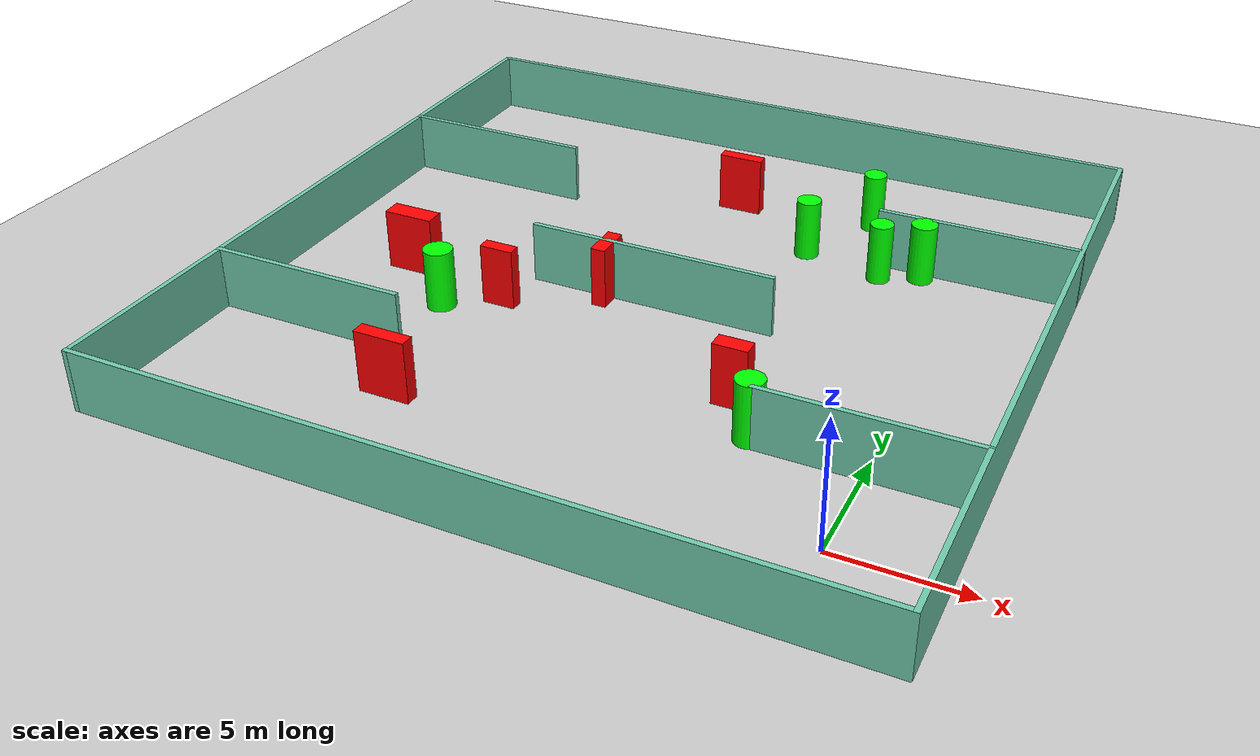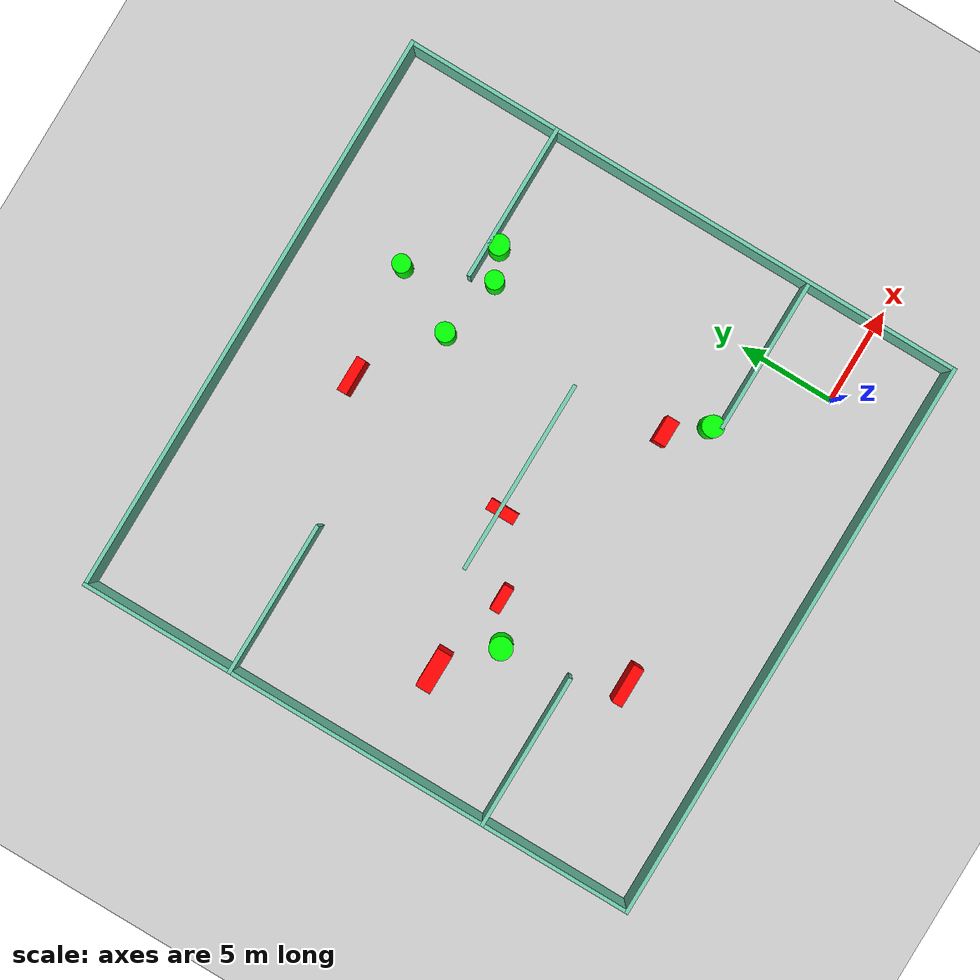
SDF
<sdf version="1.7">
 <world name="default">
  <light name="sun" type="directional">
   <pose>0 0 10 0 -0 0</pose>
   <diffuse>0.8 0.8 0.8 1</diffuse>
   <specular>0.2 0.2 0.2 1</specular>
   <attenuation>
    <range>1000</range>
    <constant>0.9</constant>
    <linear>0.01</linear>
    <quadratic>0.001</quadratic>
   </attenuation>
   <direction>-0.5 0.1 -0.9</direction>
   <spot><inner_angle>0</inner_angle><outer_angle>0</outer_angle><falloff>0</falloff></spot>
  </light>
  <model name="ground_plane">
   <static>1</static>
   <link name="link">
    <collision name="collision">
     <geometry><plane><normal>0 0 1</normal><size>100 100</size></plane></geometry>
     <surface>
      <contact><collide_bitmask>65535</collide_bitmask></contact>
      <friction><ode><mu>100</mu><mu2>50</mu2></ode></friction>
     </surface>
    </collision>
    <visual name="visual">
     <cast_shadows>0</cast_shadows>
     <geometry><plane><normal>0 0 1</normal><size>100 100</size></plane></geometry>
     <material>
      <script><uri>file://media/materials/scripts/gazebo.material</uri><name>Gazebo/Grey</name></script>
     </material>
    </visual>
   </link>
  </model>
  <gravity>0 0 -9.8</gravity>
  <magnetic_field>6e-06 2.3e-05 -4.2e-05</magnetic_field>
  <atmosphere type="adiabatic"/>
  <physics type="ode">
   <max_step_size>0.001</max_step_size>
   <real_time_factor>1</real_time_factor>
   <real_time_update_rate>1000</real_time_update_rate>
  </physics>
  <scene><ambient>0.4 0.4 0.4 1</ambient><background>0.7 0.7 0.7 1</background><shadows>1</shadows></scene>
  <spherical_coordinates>
   <surface_model>EARTH_WGS84</surface_model>
   <latitude_deg>0</latitude_deg>
   <longitude_deg>0</longitude_deg>
   <elevation>0</elevation>
   <heading_deg>0</heading_deg>
  </spherical_coordinates>
  <model name="my_base_walls">
   <link name="Wall_10">
    <collision name="Wall_10_Collision">
     <geometry><box><size>8.2 0.2 2.5</size></box></geometry>
     <pose>0 0 1.25 0 -0 0</pose>
    </collision>
    <visual name="Wall_10_Visual">
     <pose>0 0 1.25 0 -0 0</pose>
     <geometry><box><size>8.2 0.2 2.5</size></box></geometry>
     <material>
      <script><uri>file://media/materials/scripts/gazebo.material</uri><name>Gazebo/Grey</name></script>
      <ambient>0.435294 0.796078 0.67451 1</ambient>
     </material>
     <meta><layer>0</layer></meta>
    </visual>
    <pose>-11 -7 0 0 -0 0</pose>
   </link>
   <link name="Wall_12">
    <collision name="Wall_12_Collision">
     <geometry><box><size>8.2 0.2 2.5</size></box></geometry>
     <pose>0 0 1.25 0 -0 0</pose>
    </collision>
    <visual name="Wall_12_Visual">
     <pose>0 0 1.25 0 -0 0</pose>
     <geometry><box><size>8.2 0.2 2.5</size></box></geometry>
     <material>
      <script><uri>file://media/materials/scripts/gazebo.material</uri><name>Gazebo/Grey</name></script>
      <ambient>0.435294 0.796078 0.67451 1</ambient>
     </material>
     <meta><layer>0</layer></meta>
    </visual>
    <pose>-11 7 0 0 -0 0</pose>
   </link>
   <link name="Wall_14">
    <collision name="Wall_14_Collision">
     <geometry><box><size>8.2 0.2 2.5</size></box></geometry>
     <pose>0 0 1.25 0 -0 0</pose>
    </collision>
    <visual name="Wall_14_Visual">
     <pose>0 0 1.25 0 -0 0</pose>
     <geometry><box><size>8.2 0.2 2.5</size></box></geometry>
     <material>
      <script><uri>file://media/materials/scripts/gazebo.material</uri><name>Gazebo/Grey</name></script>
      <ambient>0.435294 0.796078 0.67451 1</ambient>
     </material>
     <meta><layer>0</layer></meta>
    </visual>
    <pose>11 7 0 0 -0 3.14159</pose>
   </link>
   <link name="Wall_16">
    <collision name="Wall_16_Collision">
     <geometry><box><size>10.2 0.2 2.5</size></box></geometry>
     <pose>0 0 1.25 0 -0 0</pose>
    </collision>
    <visual name="Wall_16_Visual">
     <pose>0 0 1.25 0 -0 0</pose>
     <geometry><box><size>10.2 0.2 2.5</size></box></geometry>
     <material>
      <script><uri>file://media/materials/scripts/gazebo.material</uri><name>Gazebo/Grey</name></script>
      <ambient>0.435294 0.796078 0.67451 1</ambient>
     </material>
     <meta><layer>0</layer></meta>
    </visual>
    <pose>0 0 0 0 -0 3.14159</pose>
   </link>
   <link name="Wall_2">
    <collision name="Wall_2_Collision">
     <geometry><box><size>30.2 0.2 2.5</size></box></geometry>
     <pose>0 0 1.25 0 -0 0</pose>
    </collision>
    <visual name="Wall_2_Visual">
     <pose>0 0 1.25 0 -0 0</pose>
     <geometry><box><size>30.2 0.2 2.5</size></box></geometry>
     <material>
      <script><uri>file://media/materials/scripts/gazebo.material</uri><name>Gazebo/Grey</name></script>
      <ambient>0.435294 0.796078 0.67451 1</ambient>
     </material>
     <meta><layer>0</layer></meta>
    </visual>
    <pose>0 -15 0 0 -0 3.14159</pose>
   </link>
   <link name="Wall_3">
    <collision name="Wall_3_Collision">
     <geometry><box><size>30.2 0.2 2.5</size></box></geometry>
     <pose>0 0 1.25 0 -0 0</pose>
    </collision>
    <visual name="Wall_3_Visual">
     <pose>0 0 1.25 0 -0 0</pose>
     <geometry><box><size>30.2 0.2 2.5</size></box></geometry>
     <material>
      <script><uri>file://media/materials/scripts/gazebo.material</uri><name>Gazebo/Grey</name></script>
      <ambient>0.435294 0.796078 0.67451 1</ambient>
     </material>
     <meta><layer>0</layer></meta>
    </visual>
    <pose>-15 0 0 0 -0 1.5708</pose>
   </link>
   <link name="Wall_4">
    <collision name="Wall_4_Collision">
     <geometry><box><size>30.2 0.2 2.5</size></box></geometry>
     <pose>0 0 1.25 0 -0 0</pose>
    </collision>
    <visual name="Wall_4_Visual">
     <pose>0 0 1.25 0 -0 0</pose>
     <geometry><box><size>30.2 0.2 2.5</size></box></geometry>
     <material>
      <script><uri>file://media/materials/scripts/gazebo.material</uri><name>Gazebo/Grey</name></script>
      <ambient>0.435294 0.796078 0.67451 1</ambient>
     </material>
     <meta><layer>0</layer></meta>
    </visual>
    <pose>0 15 0 0 -0 0</pose>
   </link>
   <link name="Wall_6">
    <collision name="Wall_6_Collision">
     <geometry><box><size>30.2 0.2 2.5</size></box></geometry>
     <pose>0 0 1.25 0 -0 0</pose>
    </collision>
    <visual name="Wall_6_Visual">
     <pose>0 0 1.25 0 -0 0</pose>
     <geometry><box><size>30.2 0.2 2.5</size></box></geometry>
     <material>
      <script><uri>file://media/materials/scripts/gazebo.material</uri><name>Gazebo/Grey</name></script>
      <ambient>0.435294 0.796078 0.67451 1</ambient>
     </material>
     <meta><layer>0</layer></meta>
    </visual>
    <pose>15 0 0 0 -0 1.5708</pose>
   </link>
   <link name="Wall_8">
    <collision name="Wall_8_Collision">
     <geometry><box><size>8.2 0.2 2.5</size></box></geometry>
     <pose>0 0 1.25 0 -0 0</pose>
    </collision>
    <visual name="Wall_8_Visual">
     <pose>0 0 1.25 0 -0 0</pose>
     <geometry><box><size>8.2 0.2 2.5</size></box></geometry>
     <material>
      <script><uri>file://media/materials/scripts/gazebo.material</uri><name>Gazebo/Grey</name></script>
      <ambient>0.435294 0.796078 0.67451 1</ambient>
     </material>
     <meta><layer>0</layer></meta>
    </visual>
    <pose>11 -7 0 0 -0 3.14159</pose>
   </link>
   <static>1</static>
   <pose>-11 11 0 0 -0 0</pose>
  </model>
  <model name="cylinder1">
   <static>1</static>
   <link name="link">
    <inertial>
     <mass>1</mass>
     <inertia><ixx>0.5</ixx><ixy>0</ixy><ixz>0</ixz><iyy>0.5</iyy><iyz>0</iyz><izz>1</izz></inertia>
    </inertial>
    <collision name="collision">
     <geometry><cylinder><radius>0.47603635175889103</radius><length>2.5</length></cylinder></geometry>
    </collision>
    <visual name="visual">
     <geometry><cylinder><radius>0.47603635175889103</radius><length>2.5</length></cylinder></geometry>
     <material>
      <ambient>0 1 0 1</ambient>
      <diffuse>0 1 0 1</diffuse>
      <specular>0.1 0.1 0.1 1</specular>
      <emissive>0 0 0 0</emissive>
     </material>
    </visual>
   </link>
   <pose>-3.6157536779480637 16.85058186043521 1.25 0 0 0</pose>
  </model>
  <model name="cylinder2">
   <static>1</static>
   <link name="link">
    <inertial>
     <mass>1</mass>
     <inertia><ixx>0.5</ixx><ixy>0</ixy><ixz>0</ixz><iyy>0.5</iyy><iyz>0</iyz><izz>1</izz></inertia>
    </inertial>
    <collision name="collision">
     <geometry><cylinder><radius>0.49977883113261834</radius><length>2.5</length></cylinder></geometry>
    </collision>
    <visual name="visual">
     <geometry><cylinder><radius>0.49977883113261834</radius><length>2.5</length></cylinder></geometry>
     <material>
      <ambient>0 1 0 1</ambient>
      <diffuse>0 1 0 1</diffuse>
      <specular>0.1 0.1 0.1 1</specular>
      <emissive>0 0 0 0</emissive>
     </material>
    </visual>
   </link>
   <pose>-6.941858199487104 17.58394843075297 1.25 0 0 0</pose>
  </model>
  <model name="cylinder3">
   <static>1</static>
   <link name="link">
    <inertial>
     <mass>1</mass>
     <inertia><ixx>0.5</ixx><ixy>0</ixy><ixz>0</ixz><iyy>0.5</iyy><iyz>0</iyz><izz>1</izz></inertia>
    </inertial>
    <collision name="collision">
     <geometry><cylinder><radius>0.5279433301341679</radius><length>2.5</length></cylinder></geometry>
    </collision>
    <visual name="visual">
     <geometry><cylinder><radius>0.5279433301341679</radius><length>2.5</length></cylinder></geometry>
     <material>
      <ambient>0 1 0 1</ambient>
      <diffuse>0 1 0 1</diffuse>
      <specular>0.1 0.1 0.1 1</specular>
      <emissive>0 0 0 0</emissive>
     </material>
    </visual>
   </link>
   <pose>-2.075953471238922 17.536596144487316 1.25 0 0 0</pose>
  </model>
  <model name="cylinder4">
   <static>1</static>
   <link name="link">
    <inertial>
     <mass>1</mass>
     <inertia><ixx>0.5</ixx><ixy>0</ixy><ixz>0</ixz><iyy>0.5</iyy><iyz>0</iyz><izz>1</izz></inertia>
    </inertial>
    <collision name="collision">
     <geometry><cylinder><radius>0.5555203419316157</radius><length>2.5</length></cylinder></geometry>
    </collision>
    <visual name="visual">
     <geometry><cylinder><radius>0.5555203419316157</radius><length>2.5</length></cylinder></geometry>
     <material>
      <ambient>0 1 0 1</ambient>
      <diffuse>0 1 0 1</diffuse>
      <specular>0.1 0.1 0.1 1</specular>
      <emissive>0 0 0 0</emissive>
     </material>
    </visual>
   </link>
   <pose>-4.197847432172221 4.392556264293766 1.25 0 0 0</pose>
  </model>
  <model name="cylinder5">
   <static>1</static>
   <link name="link">
    <inertial>
     <mass>1</mass>
     <inertia><ixx>0.5</ixx><ixy>0</ixy><ixz>0</ixz><iyy>0.5</iyy><iyz>0</iyz><izz>1</izz></inertia>
    </inertial>
    <collision name="collision">
     <geometry><cylinder><radius>0.5877428979439306</radius><length>2.5</length></cylinder></geometry>
    </collision>
    <visual name="visual">
     <geometry><cylinder><radius>0.5877428979439306</radius><length>2.5</length></cylinder></geometry>
     <material>
      <ambient>0 1 0 1</ambient>
      <diffuse>0 1 0 1</diffuse>
      <specular>0.1 0.1 0.1 1</specular>
      <emissive>0 0 0 0</emissive>
     </material>
    </visual>
   </link>
   <pose>-18.40696595411106 7.560075945576916 1.25 0 0 0</pose>
  </model>
  <model name="cylinder6">
   <static>1</static>
   <link name="link">
    <inertial>
     <mass>1</mass>
     <inertia><ixx>0.5</ixx><ixy>0</ixy><ixz>0</ixz><iyy>0.5</iyy><iyz>0</iyz><izz>1</izz></inertia>
    </inertial>
    <collision name="collision">
     <geometry><cylinder><radius>0.46845327683234866</radius><length>2.5</length></cylinder></geometry>
    </collision>
    <visual name="visual">
     <geometry><cylinder><radius>0.46845327683234866</radius><length>2.5</length></cylinder></geometry>
     <material>
      <ambient>0 1 0 1</ambient>
      <diffuse>0 1 0 1</diffuse>
      <specular>0.1 0.1 0.1 1</specular>
      <emissive>0 0 0 0</emissive>
     </material>
    </visual>
   </link>
   <pose>-5.228956978178484 21.03134312354278 1.25 0 0 0</pose>
  </model>
  <model name="box1">
   <static>1</static>
   <link name="link">
    <inertial>
     <mass>1</mass>
     <inertia><ixx>0.083</ixx><ixy>0</ixy><ixz>0</ixz><iyy>0.083</iyy><iyz>0</iyz><izz>0.083</izz></inertia>
    </inertial>
    <collision name="collision">
     <geometry><box><size>2.0657857141078217 0.8000561539211626 2.5</size></box></geometry>
    </collision>
    <visual name="visual">
     <geometry><box><size>2.0657857141078217 0.8000561539211626 2.5</size></box></geometry>
     <material>
      <ambient>1 0 0 1</ambient>
      <diffuse>1 0 0 1</diffuse>
      <specular>0.1 0.1 0.1 1</specular>
      <emissive>0 0 0 0</emissive>
     </material>
    </visual>
    <sensor name="my_contact" type="contact">
     <contact><collision>box_collision</collision><topic>__default_topic__</topic></contact>
    </sensor>
   </link>
   <pose>-20.965484768156212 9.72918148283826 1.25 0 0 0</pose>
  </model>
  <model name="box2">
   <static>1</static>
   <link name="link">
    <inertial>
     <mass>1</mass>
     <inertia><ixx>0.083</ixx><ixy>0</ixy><ixz>0</ixz><iyy>0.083</iyy><iyz>0</iyz><izz>0.083</izz></inertia>
    </inertial>
    <collision name="collision">
     <geometry><box><size>1.3601351723195108 0.6721157292941575 2.5</size></box></geometry>
    </collision>
    <visual name="visual">
     <geometry><box><size>1.3601351723195108 0.6721157292941575 2.5</size></box></geometry>
     <material>
      <ambient>1 0 0 1</ambient>
      <diffuse>1 0 0 1</diffuse>
      <specular>0.1 0.1 0.1 1</specular>
      <emissive>0 0 0 0</emissive>
     </material>
    </visual>
    <sensor name="my_contact" type="contact">
     <contact><collision>box_collision</collision><topic>__default_topic__</topic></contact>
    </sensor>
   </link>
   <pose>-5.5444110346181965 6.168704984380131 1.25 0 0 0</pose>
  </model>
  <model name="box3">
   <static>1</static>
   <link name="link">
    <inertial>
     <mass>1</mass>
     <inertia><ixx>0.083</ixx><ixy>0</ixy><ixz>0</ixz><iyy>0.083</iyy><iyz>0</iyz><izz>0.083</izz></inertia>
    </inertial>
    <collision name="collision">
     <geometry><box><size>1.850828763917888 0.5090619776944757 2.5</size></box></geometry>
    </collision>
    <visual name="visual">
     <geometry><box><size>1.850828763917888 0.5090619776944757 2.5</size></box></geometry>
     <material>
      <ambient>1 0 0 1</ambient>
      <diffuse>1 0 0 1</diffuse>
      <specular>0.1 0.1 0.1 1</specular>
      <emissive>0 0 0 0</emissive>
     </material>
    </visual>
    <sensor name="my_contact" type="contact">
     <contact><collision>box_collision</collision><topic>__default_topic__</topic></contact>
    </sensor>
   </link>
   <pose>-10.987575880115896 20.305627853995965 1.25 0 0 0</pose>
  </model>
  <model name="box4">
   <static>1</static>
   <link name="link">
    <inertial>
     <mass>1</mass>
     <inertia><ixx>0.083</ixx><ixy>0</ixy><ixz>0</ixz><iyy>0.083</iyy><iyz>0</iyz><izz>0.083</izz></inertia>
    </inertial>
    <collision name="collision">
     <geometry><box><size>1.3688072737450216 0.5246772795931518 2.5</size></box></geometry>
    </collision>
    <visual name="visual">
     <geometry><box><size>1.3688072737450216 0.5246772795931518 2.5</size></box></geometry>
     <material>
      <ambient>1 0 0 1</ambient>
      <diffuse>1 0 0 1</diffuse>
      <specular>0.1 0.1 0.1 1</specular>
      <emissive>0 0 0 0</emissive>
     </material>
    </visual>
    <sensor name="my_contact" type="contact">
     <contact><collision>box_collision</collision><topic>__default_topic__</topic></contact>
    </sensor>
   </link>
   <pose>-16.3876791578964 8.731481900913606 1.25 0 0 0</pose>
  </model>
  <model name="box5">
   <static>1</static>
   <link name="link">
    <inertial>
     <mass>1</mass>
     <inertia><ixx>0.083</ixx><ixy>0</ixy><ixz>0</ixz><iyy>0.083</iyy><iyz>0</iyz><izz>0.083</izz></inertia>
    </inertial>
    <collision name="collision">
     <geometry><box><size>2.0614772181283727 0.5572449303961292 2.5</size></box></geometry>
    </collision>
    <visual name="visual">
     <geometry><box><size>2.0614772181283727 0.5572449303961292 2.5</size></box></geometry>
     <material>
      <ambient>1 0 0 1</ambient>
      <diffuse>1 0 0 1</diffuse>
      <specular>0.1 0.1 0.1 1</specular>
      <emissive>0 0 0 0</emissive>
     </material>
    </visual>
    <sensor name="my_contact" type="contact">
     <contact><collision>box_collision</collision><topic>__default_topic__</topic></contact>
    </sensor>
   </link>
   <pose>-16.816631826827766 1.4925008719868824 1.25 0 0 0</pose>
  </model>
  <model name="box6">
   <static>1</static>
   <link name="link">
    <inertial>
     <mass>1</mass>
     <inertia><ixx>0.083</ixx><ixy>0</ixy><ixz>0</ixz><iyy>0.083</iyy><iyz>0</iyz><izz>0.083</izz></inertia>
    </inertial>
    <collision name="collision">
     <geometry><box><size>0.5994566585489473 1.5158572675461621 2.5</size></box></geometry>
    </collision>
    <visual name="visual">
     <geometry><box><size>0.5994566585489473 1.5158572675461621 2.5</size></box></geometry>
     <material>
      <ambient>1 0 0 1</ambient>
      <diffuse>1 0 0 1</diffuse>
      <specular>0.1 0.1 0.1 1</specular>
      <emissive>0 0 0 0</emissive>
     </material>
    </visual>
    <sensor name="my_contact" type="contact">
     <contact><collision>box_collision</collision><topic>__default_topic__</topic></contact>
    </sensor>
   </link>
   <pose>-12.819347294249319 10.860898593973479 1.25 0 0 0</pose>
  </model>
 </world>
</sdf>
